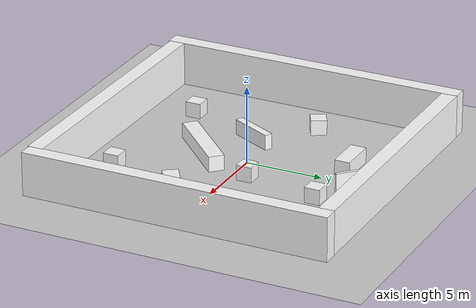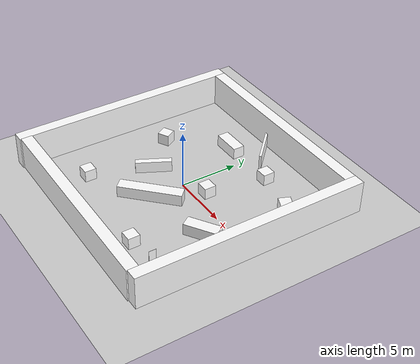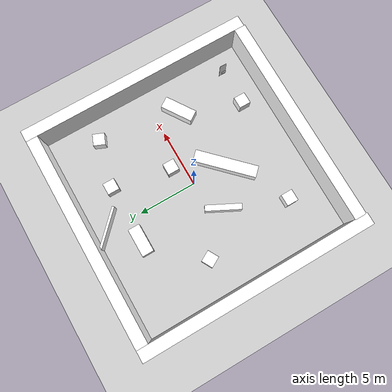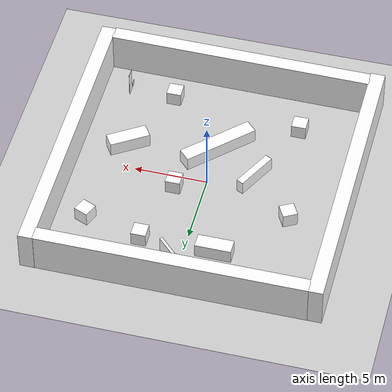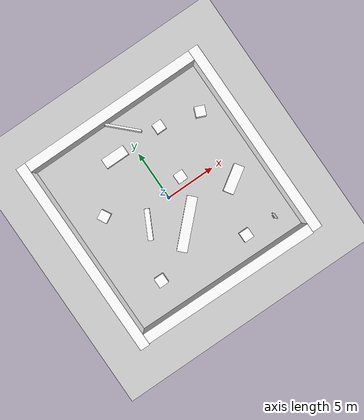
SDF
<?xml version='1.0'?>
<sdf version='1.7'>
  <world name='default'>

    <plugin filename="gz-sim-physics-system" name="gz::sim::systems::Physics" />
    <plugin filename="gz-sim-user-commands-system" name="gz::sim::systems::UserCommands" />
    <plugin filename="gz-sim-scene-broadcaster-system" name="gz::sim::systems::SceneBroadcaster" />

    <scene>
      <ambient>0.6 0.6 0.6 1</ambient>
      <background>0.4 0.4 0.4 1</background>
      <shadows>true</shadows>
    </scene>

    <light name="sun_ignition" type="directional">
      <cast_shadows>true</cast_shadows>
      <pose>0 0 10 0 0 0</pose>
      <diffuse>1 1 1 1</diffuse>
      <specular>0.5 0.5 0.5 1</specular>
      <direction>-0.5 0.1 -0.9</direction>
    </light>

    <model name='ground_plane'>
      <static>1</static>
      <link name='link'>
        <collision name='collision'>
          <geometry><plane><normal>0 0 1</normal><size>100 100</size></plane></geometry>
        </collision>
        <visual name='visual'>
          <geometry><plane><normal>0 0 1</normal><size>100 100</size></plane></geometry>
          <material>
            <ambient>0.8 0.8 0.8 1</ambient>
            <diffuse>0.8 0.8 0.8 1</diffuse>
          </material>
        </visual>
      </link>
    </model>

    <model name='unit_box'><static>1</static><pose>-9.5 0 1.19 0 0 0</pose><link name='link'><visual name='v'><geometry><box><size>1 20 3.25</size></box></geometry><material><ambient>1 1 1 1</ambient><diffuse>1 1 1 1</diffuse><specular>0 0 0 1</specular><pbr><metal><roughness>0.6</roughness><metalness>0.0</metalness></metal></pbr></material></visual><collision name='c'><geometry><box><size>1 20 3.25</size></box></geometry></collision></link></model>
    <model name='unit_box_clone'><static>1</static><pose>9.5 0 1.19 0 0 0</pose><link name='link'><visual name='v'><geometry><box><size>1 20 3.25</size></box></geometry><material><ambient>1 1 1 1</ambient><diffuse>1 1 1 1</diffuse><specular>0 0 0 1</specular><pbr><metal><roughness>0.6</roughness><metalness>0.0</metalness></metal></pbr></material></visual><collision name='c'><geometry><box><size>1 20 3.25</size></box></geometry></collision></link></model>
    <model name='unit_box_clone_clone'><static>1</static><pose>0 -9.5 1.19 0 0 1.56</pose><link name='link'><visual name='v'><geometry><box><size>1 18.1 3.25</size></box></geometry><material><ambient>1 1 1 1</ambient><diffuse>1 1 1 1</diffuse><specular>0 0 0 1</specular><pbr><metal><roughness>0.6</roughness><metalness>0.0</metalness></metal></pbr></material></visual><collision name='c'><geometry><box><size>1 18.1 3.25</size></box></geometry></collision></link></model>
    <model name='unit_box_clone_clone_clone'><static>1</static><pose>0 9.5 1.19 0 0 1.57</pose><link name='link'><visual name='v'><geometry><box><size>1 18.1 3.25</size></box></geometry><material><ambient>1 1 1 1</ambient><diffuse>1 1 1 1</diffuse><specular>0 0 0 1</specular><pbr><metal><roughness>0.6</roughness><metalness>0.0</metalness></metal></pbr></material></visual><collision name='c'><geometry><box><size>1 18.1 3.25</size></box></geometry></collision></link></model>

    <model name='unit_box_0'><static>1</static><pose>-5 -6 0.5 0 0 0</pose><link name='link'><visual name='v'><geometry><box><size>1 1 1</size></box></geometry><material><ambient>1 1 1 1</ambient><diffuse>1 1 1 1</diffuse><specular>0 0 0 1</specular><pbr><metal><roughness>0.6</roughness><metalness>0.0</metalness></metal></pbr></material></visual><collision name='c'><geometry><box><size>1 1 1</size></box></geometry></collision></link></model>
    <model name='unit_box_0_clone_0'><static>1</static><pose>-6 2 0.5 0 0 0.5</pose><link name='link'><visual name='v'><geometry><box><size>1 1 1</size></box></geometry><material><ambient>1 1 1 1</ambient><diffuse>1 1 1 1</diffuse><specular>0 0 0 1</specular><pbr><metal><roughness>0.6</roughness><metalness>0.0</metalness></metal></pbr></material></visual><collision name='c'><geometry><box><size>1 1 1</size></box></geometry></collision></link></model>
    <model name='unit_box_0_clone_1'><static>1</static><pose>4 -7 0.5 0 0 0</pose><link name='link'><visual name='v'><geometry><box><size>1 1 1</size></box></geometry><material><ambient>1 1 1 1</ambient><diffuse>1 1 1 1</diffuse><specular>0 0 0 1</specular><pbr><metal><roughness>0.6</roughness><metalness>0.0</metalness></metal></pbr></material></visual><collision name='c'><geometry><box><size>1 1 1</size></box></geometry></collision></link></model>
    <model name='unit_box_0_clone_2'><static>1</static><pose>0 -3 0.5 0 0 0.78</pose><link name='link'><visual name='v'><geometry><box><size>5.31 1 1</size></box></geometry><material><ambient>1 1 1 1</ambient><diffuse>1 1 1 1</diffuse><specular>0 0 0 1</specular><pbr><metal><roughness>0.6</roughness><metalness>0.0</metalness></metal></pbr></material></visual><collision name='c'><geometry><box><size>5.31 1 1</size></box></geometry></collision></link></model>
    <model name='unit_box_0_clone_3'><static>1</static><pose>3 6 0.5 0 0 0</pose><link name='link'><visual name='v'><geometry><box><size>1 1 1</size></box></geometry><material><ambient>1 1 1 1</ambient><diffuse>1 1 1 1</diffuse><specular>0 0 0 1</specular><pbr><metal><roughness>0.6</roughness><metalness>0.0</metalness></metal></pbr></material></visual><collision name='c'><geometry><box><size>1 1 1</size></box></geometry></collision></link></model>
    <model name='unit_box_0_clone_4'><static>1</static><pose>7 5 0.5 0 0 -0.4</pose><link name='link'><visual name='v'><geometry><box><size>1 1 1</size></box></geometry><material><ambient>1 1 1 1</ambient><diffuse>1 1 1 1</diffuse><specular>0 0 0 1</specular><pbr><metal><roughness>0.6</roughness><metalness>0.0</metalness></metal></pbr></material></visual><collision name='c'><geometry><box><size>1 1 1</size></box></geometry></collision></link></model>
    <model name='unit_box_0_clone_5'><static>1</static><pose>-2 6 0.5 0 0 1.57</pose><link name='link'><visual name='v'><geometry><box><size>1 2.42 1</size></box></geometry><material><ambient>1 1 1 1</ambient><diffuse>1 1 1 1</diffuse><specular>0 0 0 1</specular><pbr><metal><roughness>0.6</roughness><metalness>0.0</metalness></metal></pbr></material></visual><collision name='c'><geometry><box><size>1 2.42 1</size></box></geometry></collision></link></model>
    <model name='unit_box_0_clone_6'><static>1</static><pose>6 -2 0.5 0 0 0.58</pose><link name='link'><visual name='v'><geometry><box><size>2.79 1 1</size></box></geometry><material><ambient>1 1 1 1</ambient><diffuse>1 1 1 1</diffuse><specular>0 0 0 1</specular><pbr><metal><roughness>0.6</roughness><metalness>0.0</metalness></metal></pbr></material></visual><collision name='c'><geometry><box><size>2.79 1 1</size></box></geometry></collision></link></model>

    <model name='new_obstacle_1'>
      <static>1</static>
      <pose>-3 -1 0.5 0 0 1.1</pose> <link name='link'>
        <visual name='v'><geometry><box><size>3 0.5 1</size></box></geometry><material><ambient>1 1 1 1</ambient><diffuse>1 1 1 1</diffuse><specular>0 0 0 1</specular><pbr><metal><roughness>0.6</roughness><metalness>0.0</metalness></metal></pbr></material></visual>
        <collision name='c'><geometry><box><size>3 0.5 1</size></box></geometry></collision>
      </link>
    </model>

    <model name='new_obstacle_2'>
      <static>1</static>
      <pose>2 1 0.5 0 0 0</pose> <link name='link'>
        <visual name='v'><geometry><box><size>1 1 1</size></box></geometry><material><ambient>1 1 1 1</ambient><diffuse>1 1 1 1</diffuse><specular>0 0 0 1</specular><pbr><metal><roughness>0.6</roughness><metalness>0.0</metalness></metal></pbr></material></visual>
        <collision name='c'><geometry><box><size>1 1 1</size></box></geometry></collision>
      </link>
    </model>

    <model name='new_obstacle_3'>
      <static>1</static>
      <pose>0 8 0.5 0 0 -0.78</pose> <link name='link'>
        <visual name='v'><geometry><box><size>4 0.2 1.5</size></box></geometry><material><ambient>1 1 1 1</ambient><diffuse>1 1 1 1</diffuse><specular>0 0 0 1</specular><pbr><metal><roughness>0.6</roughness><metalness>0.0</metalness></metal></pbr></material></visual>
        <collision name='c'><geometry><box><size>4 0.2 1.5</size></box></geometry></collision>
      </link>
    </model>

    <model name="mon_panneau_image">
          <static>true</static>
          <pose>7 -7 0.85 0 0 3.14159</pose>
          <link name="link">
            <visual name="visual">
              <geometry>
                <box>
                  <size>0.01 0.4 0.4</size>
                </box>
              </geometry>
              <material>
                <ambient>1 1 1 1</ambient>
                <diffuse>1 1 1 1</diffuse>
                <specular>0 0 0 1</specular>
                <pbr>
                  <metal>
                    <albedo_map></albedo_map>
                    <roughness>0.6</roughness>
                    <metalness>0.0</metalness>
                  </metal>
                </pbr>
              </material>
            </visual>
            <collision name="collision">
              <geometry>
                <box>
                  <size>0.01 0.4 0.4</size>
                </box>
              </geometry>
            </collision>
          </link>
      </model>

      <model name="panneau_humain">
            <static>true</static>
            <pose>7.2 -7 0.9 0 0 3.14</pose>
            <link name="link">
              <visual name="visual">
                <geometry>
                  <box>
                    <size>0.02 0.6 1.8</size>
                  </box>
                </geometry>
                <material>
                  <ambient>1 1 1 1</ambient>
                  <diffuse>1 1 1 1</diffuse>
                  <specular>0 0 0 1</specular>
                  <pbr>
                    <metal>
                      <albedo_map></albedo_map>
                      <roughness>0.6</roughness>
                      <metalness>0.0</metalness>
                    </metal>
                  </pbr>
                </material>
              </visual>
              <collision name="collision">
                <geometry>
                  <box>
                    <size>0.02 0.6 1.8</size>
                  </box>
                </geometry>
              </collision>
            </link>
          </model>
        </world>
</sdf>
